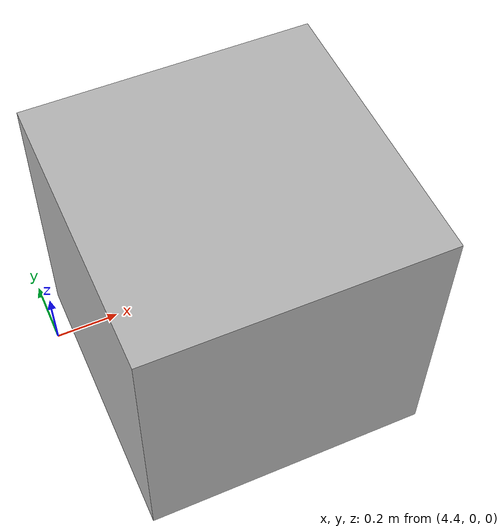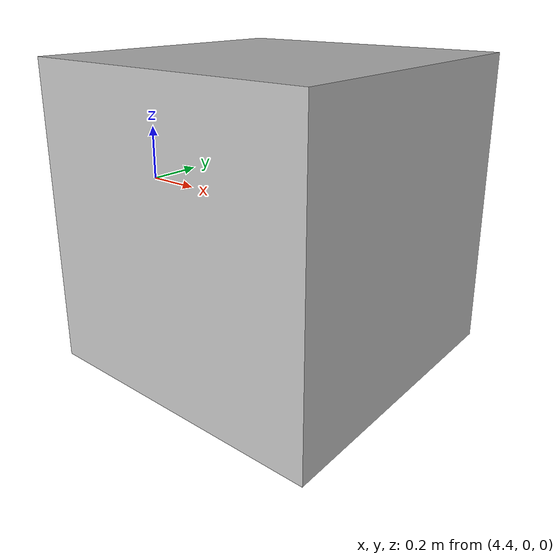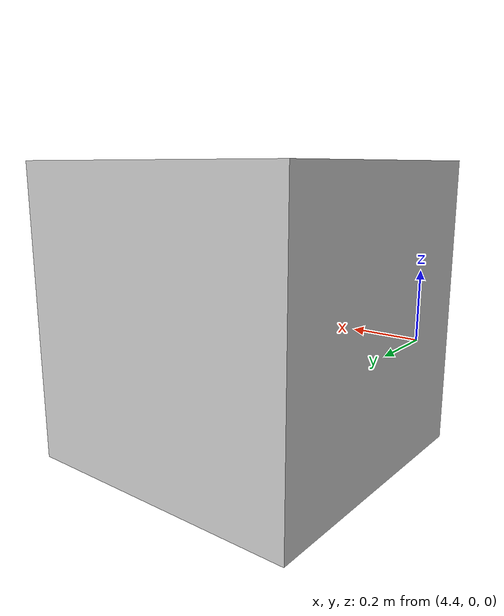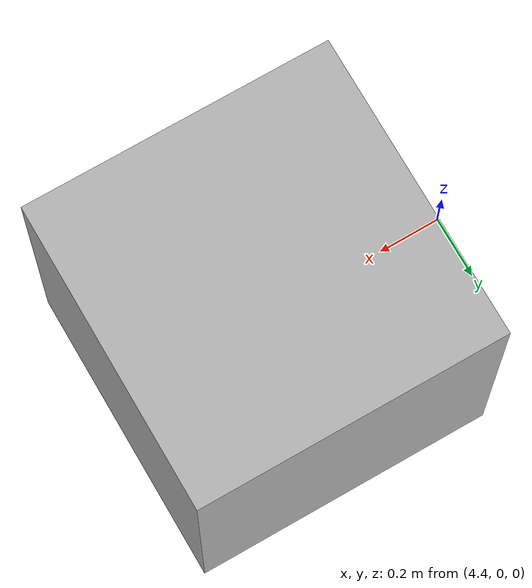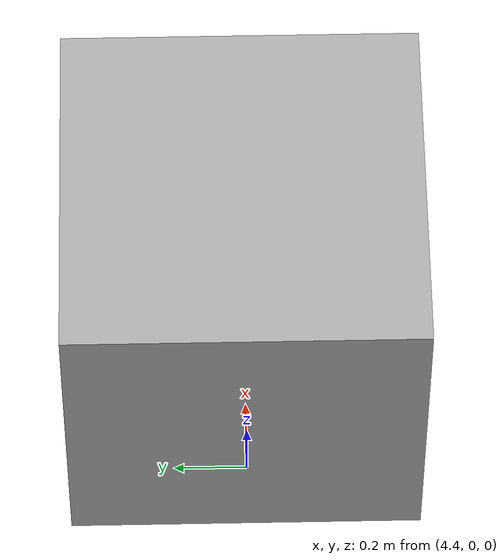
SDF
<?xml version="1.0" ?>
<sdf version="1.6">
  <world name="buoyancy_registration">
    <gravity>0 0 -9.8</gravity>

    <physics name="fast" type="dart">
      <max_step_size>0.002</max_step_size>
      <real_time_factor>0</real_time_factor>
    </physics>

    <plugin filename="gz-sim-physics-system"
            name="gz::sim::systems::Physics"/>

    <!-- So a test can spawn a model into the running world, which is how a
         vehicle normally arrives and a different code path from a model the
         world file carries. -->
    <plugin filename="gz-sim-user-commands-system"
            name="gz::sim::systems::UserCommands"/>

    <plugin filename="gz-sim-buoyancy-system"
            name="gz::sim::systems::Buoyancy">
      <graded_buoyancy>
        <default_density>1025</default_density>
        <density_change>
          <above_depth>0</above_depth>
          <density>1</density>
        </density_change>
      </graded_buoyancy>
      <enable_by_default>false</enable_by_default>
    </plugin>

    <model name="plain_box">
      <pose>0 0 0 0 0 0</pose>
      <link name="link">
        <inertial>
          <mass>500</mass>
          <inertia>
            <ixx>83.333</ixx><iyy>83.333</iyy><izz>83.333</izz>
            <ixy>0</ixy><ixz>0</ixz><iyz>0</iyz>
          </inertia>
        </inertial>
        <collision name="collision">
          <geometry><box><size>1 1 1</size></box></geometry>
        </collision>
      </link>
    </model>

    <model name="self_box">
      <pose>5 0 0 0 0 0</pose>
      <link name="link">
        <inertial>
          <mass>500</mass>
          <inertia>
            <ixx>83.333</ixx><iyy>83.333</iyy><izz>83.333</izz>
            <ixy>0</ixy><ixz>0</ixz><iyz>0</iyz>
          </inertia>
        </inertial>
        <collision name="collision">
          <geometry><box><size>1 1 1</size></box></geometry>
        </collision>
        <visual name="visual">
          <geometry><box><size>1 1 1</size></box></geometry>
        </visual>
      </link>

      <plugin filename="gz-sim-buoyancy-enable-system"
              name="gz::sim::systems::BuoyancyEnable">
        <link>link</link>
      </plugin>
    </model>

  </world>
</sdf>
